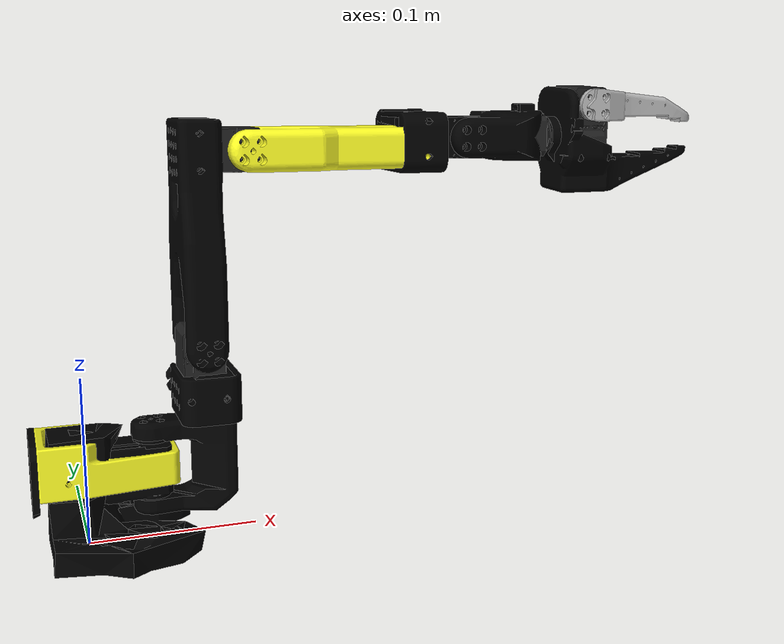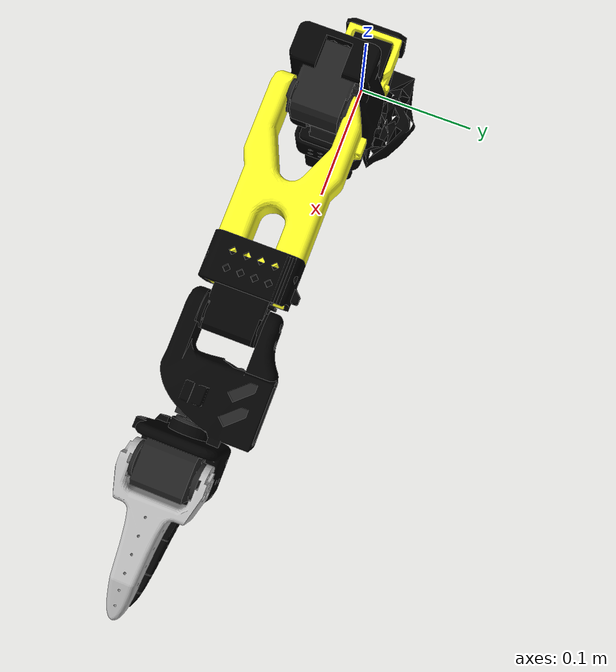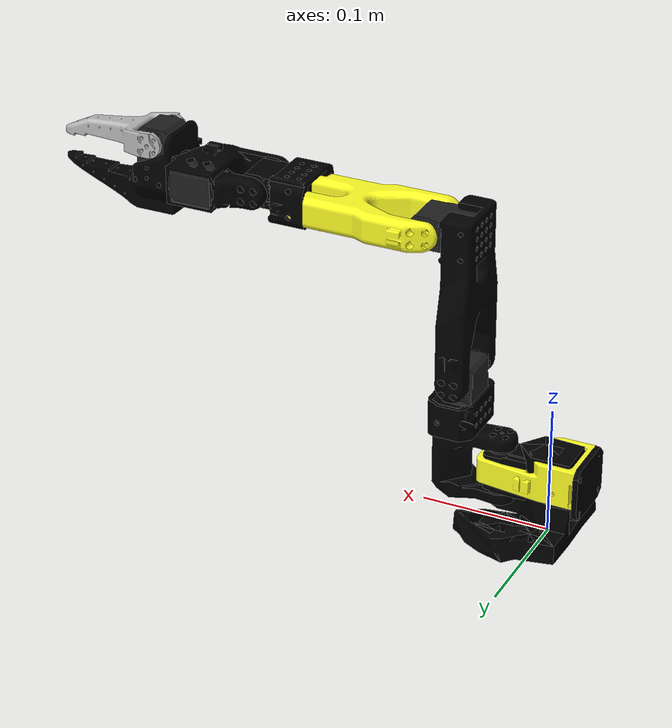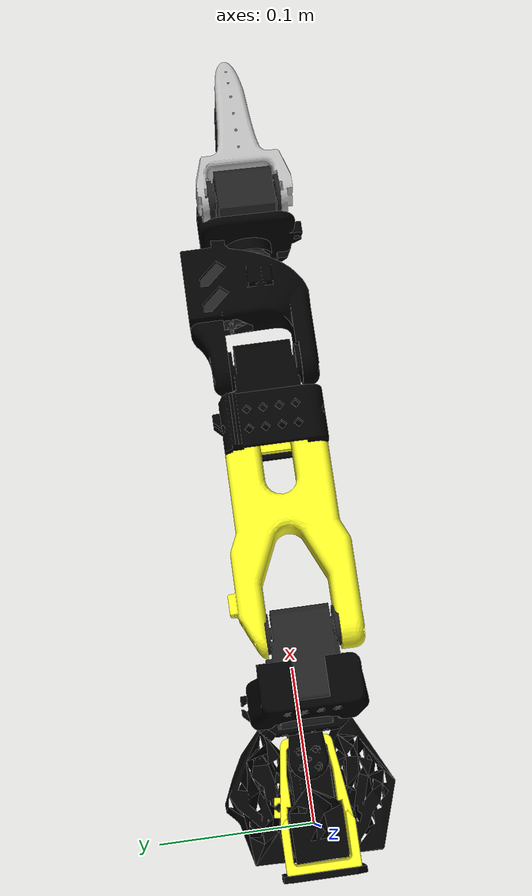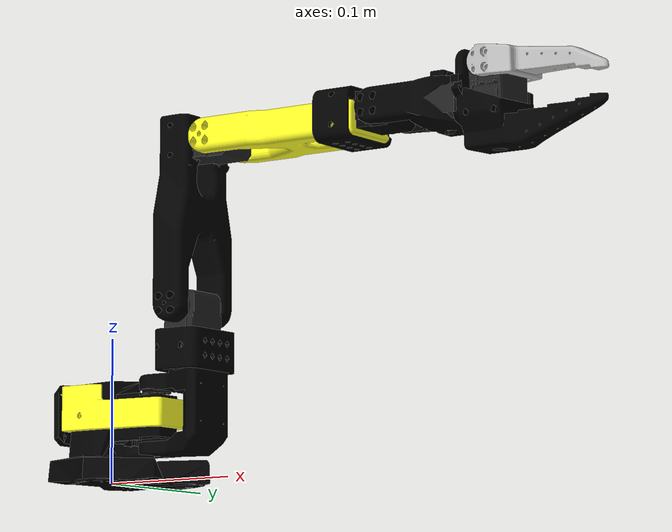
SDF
<?xml version='1.0' encoding='UTF-8'?>
<sdf version="1.7">
  <model name="so101">
    <static>false</static>
    <self_collide>false</self_collide>

<link name="base_link">
      <inertial>
        <pose>0.0137179 -5.1971100000000001e-05 0.033484300000000002 0 0 0</pose>
        <mass>0.14699999999999999</mass>
        <inertia>
          <ixx>0.00011468600000000001</ixx>
          <ixy>-4.5978699999999999e-07</ixy>
          <ixz>4.9715099999999996e-06</ixz>
          <iyy>0.000136117</iyy>
          <iyz>9.7527499999999998e-08</iyz>
          <izz>0.000130364</izz>
        </inertia>
      </inertial>

      <visual name="base_link_visual">
        <pose>-0.00636471 -9.94414e-05 -0.0023999999999999998 1.5708 -1.8318679906315083e-15 1.5708</pose>
        <geometry>
          <mesh>
            <scale>1 1 1</scale>
            <uri>model://so101/assets/base_motor_holder_so101_v1.stl</uri>
          </mesh>
        </geometry>
        <material>
          <diffuse>1 1 0.149999991 1</diffuse>
          <ambient>1 1 0.149999991 1</ambient>
        </material>
      </visual>
      <visual name="base_link_visual_1">
        <pose>-0.00636471 -8.9765700000000002e-09 -0.0023999999999999998 1.5708 -5.5511151231257827e-17 1.5708</pose>
        <geometry>
          <mesh>
            <scale>1 1 1</scale>
            <uri>model://so101/assets/base_so101_v2.stl</uri>
          </mesh>
        </geometry>
        <material>
          <diffuse>0 0 0 1</diffuse>
          <ambient>0 0 0 1</ambient>
        </material>
      </visual>
      <visual name="base_link_visual_2">
        <pose>0.026335299999999999 -8.9765700000000002e-09 0.043700000000000003 -8.2114800000000001e-16 7.8451300000000007e-18 1.249e-15</pose>
        <geometry>
          <mesh>
            <scale>1 1 1</scale>
            <uri>model://so101/assets/sts3215_03a_v1.stl</uri>
          </mesh>
        </geometry>
        <material>
          <diffuse>0 0 0 1</diffuse>
          <ambient>0 0 0 1</ambient>
        </material>
      </visual>
      <visual name="base_link_visual_3">
        <pose>-0.030982699999999998 -0.00019944099999999999 0.047399999999999998 1.5708 -1.3600232051658168e-14 1.5708</pose>
        <geometry>
          <mesh>
            <scale>1 1 1</scale>
            <uri>model://so101/assets/waveshare_mounting_plate_so101_v2.stl</uri>
          </mesh>
        </geometry>
        <material>
          <diffuse>0 0 0 1</diffuse>
          <ambient>0 0 0 1</ambient>
        </material>
      </visual>
    </link>
    <joint name="shoulder_pan" type="revolute">
      <pose relative_to="base_link">0.038835300000000003 -8.9765700000000002e-09 0.062399999999999997 3.1415899999999999 4.182529999990079e-17 -3.1415899999999999</pose>
      <parent>base_link</parent>
      <child>shoulder_link</child>
      <axis>
        <xyz>0 0 1</xyz>
        <limit>
          <lower>-1.9198599999999999</lower>
          <upper>1.9198599999999999</upper>
          <effort>0.30</effort>
          <velocity>1.0</velocity>
        </limit>
        <dynamics>
          <damping>0.03</damping>
          <friction>0.005</friction>
          <spring_reference>0</spring_reference>
          <spring_stiffness>0</spring_stiffness>
        </dynamics>
      </axis>
    </joint>
    <link name="shoulder_link">
      <pose relative_to="shoulder_pan">0 0 0 0 0 0</pose>
      <inertial>
        <pose>-0.0307604 -1.66727e-05 -0.0252713 0 0 0</pose>
        <mass>0.100006</mass>
        <inertia>
          <ixx>8.3758999999999995e-05</ixx>
          <ixy>7.5552500000000001e-08</ixy>
          <ixz>-1.1634200000000001e-06</ixz>
          <iyy>8.1040300000000004e-05</iyy>
          <iyz>1.5466300000000001e-07</iyz>
          <izz>2.39783e-05</izz>
        </inertia>
      </inertial>

      <visual name="shoulder_link_visual">
        <pose>-0.030399200000000001 0.00042224100000000001 -0.041700000000000001 1.570796326794897 1.5707963267948966 0</pose>
        <geometry>
          <mesh>
            <scale>1 1 1</scale>
            <uri>model://so101/assets/sts3215_03a_v1.stl</uri>
          </mesh>
        </geometry>
        <material>
          <diffuse>0.125 0.125 0.125 1</diffuse>
          <ambient>0.125 0.125 0.125 1</ambient>
        </material>
      </visual>
      <visual name="shoulder_link_visual_1">
        <pose>-0.067599199999999998 -0.00017775899999999999 0.0158499 1.570796326794897 -1.5707963267948966 0</pose>
        <geometry>
          <mesh>
            <scale>1 1 1</scale>
            <uri>model://so101/assets/motor_holder_so101_base_v1.stl</uri>
          </mesh>
        </geometry>
        <material>
          <diffuse>0 0 0 1</diffuse>
          <ambient>0 0 0 1</ambient>
        </material>
      </visual>
      <visual name="shoulder_link_visual_2">
        <pose>0.012200799999999999 2.22413e-05 0.046399999999999997 -1.5708 2.3522100000000016e-33 -1.7105694144590048e-49</pose>
        <geometry>
          <mesh>
            <scale>1 1 1</scale>
            <uri>model://so101/assets/rotation_pitch_so101_v1.stl</uri>
          </mesh>
        </geometry>
        <material>
          <diffuse>0 0 0 1</diffuse>
          <ambient>0 0 0 1</ambient>
        </material>
      </visual>
    </link>
    <joint name="shoulder_lift" type="revolute">
      <pose relative_to="shoulder_link">-0.030399200000000001 -0.0182778 -0.054199999999999998 1.5707926536057681 -1.5707926536662187 3.1415926535746808</pose>
      <parent>shoulder_link</parent>
      <child>upper_arm_link</child>
      <axis>
        <xyz>0 0 1</xyz>
        <limit>
          <lower>-1.74533</lower>
          <upper>1.74533</upper>
          <effort>1.00</effort>
          <velocity>0.8</velocity>
        </limit>
        <dynamics>
          <damping>0.05</damping>
          <friction>0.008</friction>
          <spring_reference>0</spring_reference>
          <spring_stiffness>0</spring_stiffness>
        </dynamics>
      </axis>
    </joint>
    <link name="upper_arm_link">
      <pose relative_to="shoulder_lift">0 0 0 0 0 0</pose>
      <inertial>
        <pose>-0.089847099999999999 -0.0083822399999999991 0.018408899999999999 0 0 0</pose>
        <mass>0.10299999999999999</mass>
        <inertia>
          <ixx>4.0800200000000003e-05</ixx>
          <ixy>-1.9781900000000001e-05</ixy>
          <ixz>-4.0301599999999997e-08</ixz>
          <iyy>0.00014731799999999999</iyy>
          <iyz>8.9732600000000005e-09</iyz>
          <izz>0.00014248700000000001</izz>
        </inertia>
      </inertial>

      <!-- Collision: upper arm -->
      <collision name="upper_arm_body_collision">
        <pose>-0.065085 0.012 0.0182 0 0 0</pose>
        <geometry>
          <box>
            <size>0.120 0.030 0.030</size>
          </box>
        </geometry>
        <surface>
          <friction>
            <ode>
              <mu>0.5</mu>
              <mu2>0.5</mu2>
            </ode>
          </friction>
          <contact>
            <ode>
              <min_depth>0.001</min_depth>
              <max_vel>0.1</max_vel>
            </ode>
          </contact>
        </surface>
      </collision>

      <collision name="upper_arm_servo_collision">
        <pose>-0.11257 -0.0155 0.0187 0 0 0</pose>
        <geometry>
          <box>
            <size>0.042 0.038 0.040</size>
          </box>
        </geometry>
        <surface>
          <friction>
            <ode>
              <mu>0.5</mu>
              <mu2>0.5</mu2>
            </ode>
          </friction>
          <contact>
            <ode>
              <min_depth>0.001</min_depth>
              <max_vel>0.1</max_vel>
            </ode>
          </contact>
        </surface>
      </collision>

      <visual name="upper_arm_link_visual">
        <pose>-0.11257 -0.0155 0.018700000000000001 -3.1415899999999999 -5.2735572493871254e-16 -1.5708</pose>
        <geometry>
          <mesh>
            <scale>1 1 1</scale>
            <uri>model://so101/assets/sts3215_03a_v1.stl</uri>
          </mesh>
        </geometry>
        <material>
          <diffuse>0.125 0.125 0.125 1</diffuse>
          <ambient>0.125 0.125 0.125 1</ambient>
        </material>
      </visual>
      <visual name="upper_arm_link_visual_1">
        <pose>-0.065085000000000004 0.012 0.018200000000000001 3.1415899999999999 0 -1.3091100000000003e-30</pose>
        <geometry>
          <mesh>
            <scale>1 1 1</scale>
            <uri>model://so101/assets/upper_arm_so101_v1.stl</uri>
          </mesh>
        </geometry>
        <material>
          <diffuse>0 0 0 1</diffuse>
          <ambient>0 0 0 1</ambient>
        </material>
      </visual>
    </link>
    <joint name="elbow_flex" type="revolute">
      <pose relative_to="upper_arm_link">-0.11257 -0.028000000000000001 1.7376299999999999e-16 -3.6360800000000002e-16 8.7430100000000044e-16 1.5708</pose>
      <parent>upper_arm_link</parent>
      <child>lower_arm_link</child>
      <axis>
        <xyz>0 0 1</xyz>
        <limit>
          <lower>-1.6899999999999999</lower>
          <upper>1.6899999999999999</upper>
          <effort>0.80</effort>
          <velocity>1.0</velocity>
        </limit>
        <dynamics>
          <damping>0.04</damping>
          <friction>0.006</friction>
          <spring_reference>0</spring_reference>
          <spring_stiffness>0</spring_stiffness>
        </dynamics>
      </axis>
    </joint>
    <link name="lower_arm_link">
      <pose relative_to="elbow_flex">0 0 0 0 0 0</pose>
      <inertial>
        <pose>-0.098070099999999993 0.00324376 0.0182831 0 0 0</pose>
        <mass>0.104</mass>
        <inertia>
          <ixx>2.8743800000000001e-05</ixx>
          <ixy>7.4115199999999998e-06</ixy>
          <ixz>1.26409e-06</ixz>
          <iyy>0.000159844</iyy>
          <iyz>-4.90188e-08</iyz>
          <izz>0.00014529000000000001</izz>
        </inertia>
      </inertial>

      <!-- Collision: lower arm -->
      <collision name="lower_arm_body_collision">
        <pose>-0.06485 -0.032 0.0182 0 0 0</pose>
        <geometry>
          <box>
            <size>0.120 0.030 0.030</size>
          </box>
        </geometry>
        <surface>
          <friction>
            <ode>
              <mu>0.5</mu>
              <mu2>0.5</mu2>
            </ode>
          </friction>
          <contact>
            <ode>
              <min_depth>0.001</min_depth>
              <max_vel>0.1</max_vel>
            </ode>
          </contact>
        </surface>
      </collision>

      <collision name="lower_arm_servo_collision">
        <pose>-0.1224 0.0052 0.0187 0 0 0</pose>
        <geometry>
          <box>
            <size>0.042 0.038 0.040</size>
          </box>
        </geometry>
        <surface>
          <friction>
            <ode>
              <mu>0.5</mu>
              <mu2>0.5</mu2>
            </ode>
          </friction>
          <contact>
            <ode>
              <min_depth>0.001</min_depth>
              <max_vel>0.1</max_vel>
            </ode>
          </contact>
        </surface>
      </collision>

      <visual name="lower_arm_link_visual">
        <pose>-0.064849900000000002 -0.032000000000000001 0.018200000000000001 3.1415899999999999 -1.6704779438076223e-52 6.672020000000002e-31</pose>
        <geometry>
          <mesh>
            <scale>1 1 1</scale>
            <uri>model://so101/assets/under_arm_so101_v1.stl</uri>
          </mesh>
        </geometry>
        <material>
          <diffuse>1 1 0.149999991 1</diffuse>
          <ambient>1 1 0.149999991 1</ambient>
        </material>
      </visual>
      <visual name="lower_arm_link_visual_1">
        <pose>-0.064849900000000002 -0.032000000000000001 0.017999999999999999 -3.1415899999999999 -2.5535100000000003e-15 -1.8338708692037182e-30</pose>
        <geometry>
          <mesh>
            <scale>1 1 1</scale>
            <uri>model://so101/assets/motor_holder_so101_wrist_v1.stl</uri>
          </mesh>
        </geometry>
        <material>
          <diffuse>0 0 0 1</diffuse>
          <ambient>0 0 0 1</ambient>
        </material>
      </visual>
      <visual name="lower_arm_link_visual_2">
        <pose>-0.12239999999999999 0.0051999999999999998 0.018700000000000001 -3.1415899999999999 0 -3.1415899999999999</pose>
        <geometry>
          <mesh>
            <scale>1 1 1</scale>
            <uri>model://so101/assets/sts3215_03a_v1.stl</uri>
          </mesh>
        </geometry>
        <material>
          <diffuse>0 0 0 1</diffuse>
          <ambient>0 0 0 1</ambient>
        </material>
      </visual>
    </link>
    <joint name="wrist_flex" type="revolute">
      <pose relative_to="lower_arm_link">-0.13489999999999999 0.0051999999999999998 3.6235500000000001e-17 4.0245600000000001e-15 8.6736199999999979e-16 -1.5708</pose>
      <parent>lower_arm_link</parent>
      <child>wrist_link</child>
      <axis>
        <xyz>0 0 1</xyz>
        <limit>
          <lower>-1.6580600000000001</lower>
          <upper>1.6580600000000001</upper>
          <effort>0.35</effort>
          <velocity>1.0</velocity>
        </limit>
        <dynamics>
          <damping>0.02</damping>
          <friction>0.004</friction>
          <spring_reference>0</spring_reference>
          <spring_stiffness>0</spring_stiffness>
        </dynamics>
      </axis>
    </joint>
    <link name="wrist_link">
      <pose relative_to="wrist_flex">0 0 0 0 0 0</pose>
      <inertial>
        <pose>-0.000103312 -0.038614299999999997 0.028115600000000001 0 0 0</pose>
        <mass>0.079000000000000001</mass>
        <inertia>
          <ixx>3.6826299999999997e-05</ixx>
          <ixy>1.7893e-08</ixy>
          <ixz>-5.28128e-08</ixz>
          <iyy>2.5391000000000001e-05</iyy>
          <iyz>3.6412e-06</iyz>
          <izz>2.0999999999999999e-05</izz>
        </inertia>
      </inertial>

      <!-- Collision: wrist -->
      <collision name="wrist_body_collision">
        <pose>0 -0.035 0.024 0 0 0</pose>
        <geometry>
          <box>
            <size>0.045 0.070 0.045</size>
          </box>
        </geometry>
        <surface>
          <friction>
            <ode>
              <mu>0.5</mu>
              <mu2>0.5</mu2>
            </ode>
          </friction>
          <contact>
            <ode>
              <min_depth>0.001</min_depth>
              <max_vel>0.1</max_vel>
            </ode>
          </contact>
        </surface>
      </collision>

      <visual name="wrist_link_visual">
        <pose>8.3266699999999998e-17 -0.0424 0.030599999999999999 1.570796326794897 1.5707963267948966 0</pose>
        <geometry>
          <mesh>
            <scale>1 1 1</scale>
            <uri>model://so101/assets/sts3215_03a_no_horn_v1.stl</uri>
          </mesh>
        </geometry>
        <material>
          <diffuse>0.125 0.125 0.125 1</diffuse>
          <ambient>0.125 0.125 0.125 1</ambient>
        </material>
      </visual>
      <visual name="wrist_link_visual_1">
        <pose>0 -0.028000000000000001 0.018100000000000002 -1.570796326794897 -1.5707963267948966 0</pose>
        <geometry>
          <mesh>
            <scale>1 1 1</scale>
            <uri>model://so101/assets/wrist_roll_pitch_so101_v2.stl</uri>
          </mesh>
        </geometry>
        <material>
          <diffuse>0 0 0 1</diffuse>
          <ambient>0 0 0 1</ambient>
        </material>
      </visual>
    </link>
    <joint name="wrist_roll" type="revolute">
      <pose relative_to="wrist_link">5.5511199999999995e-17 -0.061100000000000002 0.018100000000000002 1.5708 0.048679500000000001 3.1415899999999999</pose>
      <parent>wrist_link</parent>
      <child>gripper_link</child>
      <axis>
        <xyz>0 0 1</xyz>
        <limit>
          <lower>-2.7438500000000001</lower>
          <upper>2.8412099999999998</upper>
          <effort>0.20</effort>
          <velocity>1.5</velocity>
        </limit>
        <dynamics>
          <damping>0.015</damping>
          <friction>0.003</friction>
          <spring_reference>0</spring_reference>
          <spring_stiffness>0</spring_stiffness>
        </dynamics>
      </axis>
    </joint>
    <link name="gripper_link">
      <pose relative_to="wrist_roll">0 0 0 0 -0 0</pose>
      <inertial>
        <pose>0.000214 0.000245 -0.025187 0 -0 0</pose>
        <mass>0.087</mass>
        <inertia>
          <ixx>2.75087e-05</ixx>
          <ixy>-3.35241e-07</ixy>
          <ixz>-5.7352e-06</ixz>
          <iyy>4.33657e-05</iyy>
          <iyz>-5.17847e-08</iyz>
          <izz>3.45059e-05</izz>
        </inertia>
      </inertial>

      <!-- Collision: gripper body -->
      <collision name="gripper_body_collision">
        <pose>0.0077 0.0001 -0.025 0 0 0</pose>
        <geometry>
          <box>
            <size>0.044 0.040 0.052</size>
          </box>
        </geometry>
        <surface>
          <friction>
            <ode>
              <mu>0.6</mu>
              <mu2>0.6</mu2>
            </ode>
          </friction>
          <contact>
            <ode>
              <min_depth>0.0005</min_depth>
              <max_vel>0.05</max_vel>
            </ode>
          </contact>
        </surface>
      </collision>

      <!-- Collision: fixed gripper finger -->
      <collision name="gripper_fixed_finger_collision">
        <!-- Distal pad proxy in gripper_link; calibrated against visual STL. -->
        <pose>-0.014 -0.000218 -0.088 0 0 0</pose>
        <geometry>
          <box>
            <size>0.012 0.014 0.026</size>
          </box>
        </geometry>
        <surface>
          <friction>
            <ode>
              <mu>1.2</mu>
              <mu2>1.2</mu2>
            </ode>
          </friction>
          <contact>
            <ode>
              <min_depth>0.0005</min_depth>
              <max_vel>0.05</max_vel>
            </ode>
          </contact>
        </surface>
      </collision>
      <visual name="gripper_link_visual">
        <pose>0.0077 0.0001 -0.0234 -1.5708 -0 -0</pose>
        <geometry>
          <mesh>
            <scale>1 1 1</scale>
            <uri>model://so101/assets/sts3215_03a_v1.stl</uri>
          </mesh>
        </geometry>
        <material>
          <diffuse>0.125 0.125 0.125 1</diffuse>
          <ambient>0.125 0.125 0.125 1</ambient>
        </material>
      </visual>
      <visual name="gripper_link_visual_1">
        <pose>0 -0.000218 0.00095 -3.14159 -0 0</pose>
        <geometry>
          <mesh>
            <scale>1 1 1</scale>
            <uri>model://so101/assets/wrist_roll_follower_so101_v1.stl</uri>
          </mesh>
        </geometry>
        <material>
          <diffuse>0 0 0 1</diffuse>
          <ambient>0 0 0 1</ambient>
        </material>
      </visual>
    </link>
    <link name="moving_jaw_so101_v1_link">
      <pose relative_to="gripper">0 0 0 0 0 0</pose>

      <inertial>
        <pose>-0.00157495 -0.0300244 0.0192755 0 0 0</pose>
        <mass>0.012</mass>

        <inertia>
          <ixx>0.00001</ixx>
          <ixy>0</ixy>
          <ixz>0</ixz>
          <iyy>0.00001</iyy>
          <iyz>0</iyz>
          <izz>0.00001</izz>
        </inertia>
      </inertial>

      <!-- Collision: moving gripper finger -->
      <collision name="moving_jaw_collision">
        <!-- Distal pad proxy in moving jaw frame, not the original CAD frame. -->
        <pose>-0.006 -0.0189 -0.070 0 0 0</pose>
        <geometry>
          <box>
            <size>0.012 0.014 0.024</size>
          </box>
        </geometry>
        <surface>
          <friction>
            <ode>
              <mu>1.2</mu>
              <mu2>1.2</mu2>
            </ode>
          </friction>
          <contact>
            <ode>
              <min_depth>0.0005</min_depth>
              <max_vel>0.05</max_vel>
            </ode>
          </contact>
        </surface>
      </collision>

      <visual name="moving_jaw_visual">
        <pose>0 -0.0189 0 1.5707963267948966 0 0</pose>

        <geometry>
          <mesh>
            <scale>1 1 1</scale>
            <uri>model://so101/assets/moving_jaw_so101_v1.stl</uri>
          </mesh>
        </geometry>
      </visual>
    </link>

    <joint name="gripper" type="revolute">
      <pose relative_to="gripper_link">
        0.0202 0.0188 -0.0234 0 0 0
      </pose>

      <parent>gripper_link</parent>
      <child>moving_jaw_so101_v1_link</child>

      <axis>
        <xyz>0 -1 0</xyz>

        <limit>
          <lower>-0.174533</lower>
          <upper>1.74533</upper>
          <effort>0.05</effort>
          <velocity>0.5</velocity>
        </limit>

        <dynamics>
          <damping>0.003</damping>
          <friction>0.0005</friction>
          <spring_reference>0</spring_reference>
          <spring_stiffness>0</spring_stiffness>
        </dynamics>
      </axis>
    </joint>
    <frame name="gripper_frame_joint" attached_to="gripper_link">
      <pose>-0.0079 -0.000218 -0.098127 3.14159 3e-06 3.14159</pose>
    </frame>
    <frame name="gripper_frame_link" attached_to="gripper_frame_joint">
      <pose>0 0 0 0 -0 0</pose>
    </frame>
    <!-- shoulder_pan                                -->
    <plugin name="shoulder_pan_controller" filename="libso101_joint_position_controller.so">

      <robotNamespace>/so101</robotNamespace>

      <jointName>shoulder_pan</jointName>

      <topic>shoulder_pan/cmd_pos</topic>
      <controlSource>gazebo</controlSource>
      <gzCommandTopic>~/so101/shoulder_pan/command</gzCommandTopic>
      <gzStatusTopic>~/so101/shoulder_pan/status</gzStatusTopic>

      <initialPosition>-0.070</initialPosition>

      <p>2.0</p>
      <i>0.0</i>
      <d>0.1</d>

      <cmdMax>0.18</cmdMax>

    </plugin>
    <!-- shoulder_lift                               -->
    <plugin name="shoulder_lift_controller" filename="libso101_joint_position_controller.so">

      <robotNamespace>/so101</robotNamespace>

      <jointName>shoulder_lift</jointName>

      <topic>shoulder_lift/cmd_pos</topic>
      <controlSource>gazebo</controlSource>
      <gzCommandTopic>~/so101/shoulder_lift/command</gzCommandTopic>
      <gzStatusTopic>~/so101/shoulder_lift/status</gzStatusTopic>

      <initialPosition>-1.175</initialPosition>

      <p>3.0</p>
      <i>0.0</i>
      <d>0.14</d>

      <cmdMax>0.8</cmdMax>

    </plugin>

    <!-- elbow_flex                                  -->
    <plugin name="elbow_flex_controller" filename="libso101_joint_position_controller.so">

      <robotNamespace>/so101</robotNamespace>

      <jointName>elbow_flex</jointName>

      <topic>elbow_flex/cmd_pos</topic>
      <controlSource>gazebo</controlSource>
      <gzCommandTopic>~/so101/elbow_flex/command</gzCommandTopic>
      <gzStatusTopic>~/so101/elbow_flex/status</gzStatusTopic>

      <initialPosition>1.450</initialPosition>

      <p>2.5</p>
      <i>1.0</i>
      <iMax>0.45</iMax>
      <d>0.12</d>

      <cmdMax>0.6</cmdMax>

    </plugin>

    <!-- wrist_flex                                  -->
    <plugin name="wrist_flex_controller" filename="libso101_joint_position_controller.so">

      <robotNamespace>/so101</robotNamespace>

      <jointName>wrist_flex</jointName>

      <topic>wrist_flex/cmd_pos</topic>
      <controlSource>gazebo</controlSource>
      <gzCommandTopic>~/so101/wrist_flex/command</gzCommandTopic>
      <gzStatusTopic>~/so101/wrist_flex/status</gzStatusTopic>

      <initialPosition>1.300</initialPosition>

      <p>1.2</p>
      <i>0.0</i>
      <d>0.08</d>

      <cmdMax>0.22</cmdMax>

    </plugin>

    <!-- wrist_roll                                  -->
    <plugin name="wrist_roll_controller" filename="libso101_joint_position_controller.so">

      <robotNamespace>/so101</robotNamespace>

      <jointName>wrist_roll</jointName>

      <topic>wrist_roll/cmd_pos</topic>
      <controlSource>gazebo</controlSource>
      <gzCommandTopic>~/so101/wrist_roll/command</gzCommandTopic>
      <gzStatusTopic>~/so101/wrist_roll/status</gzStatusTopic>

      <initialPosition>-1.570</initialPosition>

      <p>0.8</p>
      <i>0.0</i>
      <d>0.05</d>

      <cmdMax>0.09</cmdMax>

    </plugin>
    <!-- gripper                                  -->
    <plugin name="gripper_controller" filename="libso101_joint_position_controller.so">

      <robotNamespace>/so101</robotNamespace>
      <jointName>gripper</jointName>
      <topic>gripper/cmd_pos</topic>
      <controlSource>gazebo</controlSource>
      <gzCommandTopic>~/so101/gripper/command</gzCommandTopic>
      <gzStatusTopic>~/so101/gripper/status</gzStatusTopic>

      <initialPosition>0.300</initialPosition>

      <p>0.03</p>
      <i>0.0</i>
      <d>0.001</d>

      <cmdMax>0.01</cmdMax>
    </plugin>

    <plugin name="so101_joint_state_publisher" filename="libso101_joint_state_publisher.so">
      <robotNamespace>/so101</robotNamespace>
      <jointName>shoulder_pan,shoulder_lift,elbow_flex,wrist_flex,wrist_roll,gripper</jointName>
      <updateRate>50</updateRate>
    </plugin>

  </model>
</sdf>
